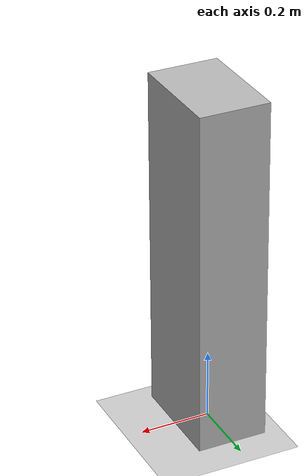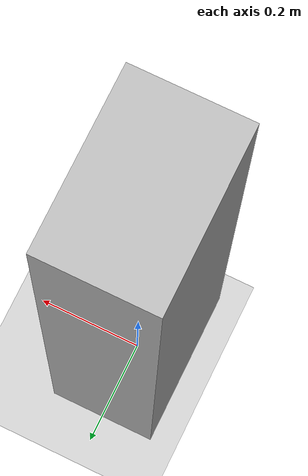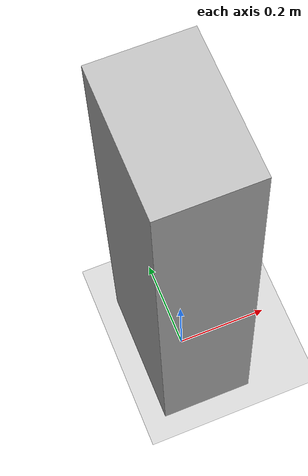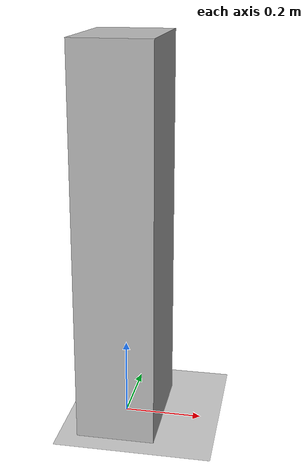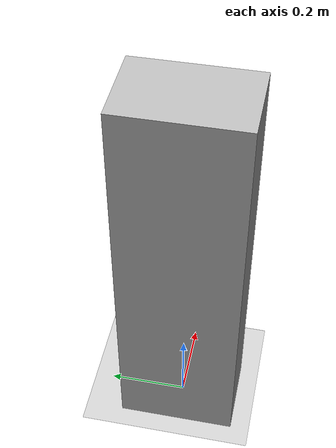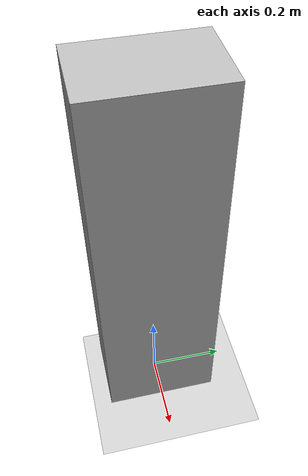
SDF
<?xml version="1.0"?>
<sdf version="1.4">
  <world name="animated_box_world">

    <!-- Ground Plane -->
    <include>
      <uri>model://ground_plane</uri>
    </include>

    <include>
      <uri>model://sun</uri>
    </include>

    <model name="box">
      <pose>0 0 0.5 0 0 0</pose>
      <link name="link">
        <collision name="collision">
          <geometry>
            <box>
              <size>0.2 0.3 1</size>
            </box>
          </geometry>
        </collision>

        <visual name="visual">
          <geometry>
            <box>
              <size>0.2 0.3 1</size>
            </box>
          </geometry>
        </visual>
      </link>

      <plugin name="push_animate" filename="libanimated_box.so"/>
    </model>
  </world>
</sdf>
